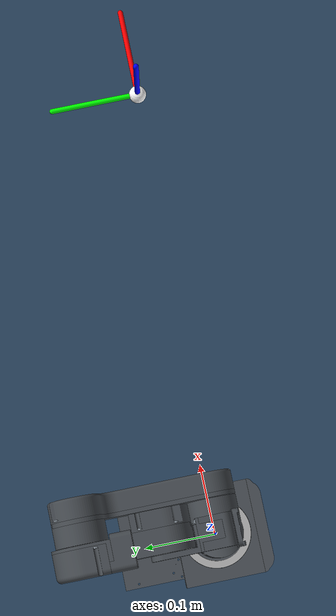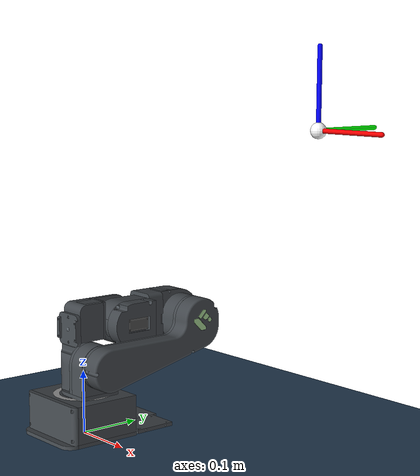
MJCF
<mujoco model="scene">
    <include file="robot.xml" />

    <visual>
        <headlight diffuse="0.6 0.6 0.6" ambient="0.3 0.3 0.3" specular="0 0 0" />
        <rgba haze="0.15 0.25 0.35 1" />
        <global azimuth="160" elevation="-20" />
    </visual>

    <asset>
        <texture type="skybox" builtin="gradient" rgb1="0.3 0.5 0.7" rgb2="0 0 0" width="512"
            height="3072" />
        <texture type="2d" name="groundplane" builtin="checker" mark="edge" rgb1="0.2 0.3 0.4"
            rgb2="0.1 0.2 0.3"
            markrgb="0.8 0.8 0.8" width="300" height="300" />
        <material name="groundplane" texture="groundplane" texuniform="true" texrepeat="5 5"
            reflectance="0.2" />
    </asset>

    <worldbody>
        <light pos="0 0 3.5" dir="0 0 -1" directional="true" />
        <geom name="floor" size="0 0 0.05" pos="0 0 0" type="plane" material="groundplane" />

        <body name="target_frame" mocap="true" pos="0.5 0 0.5">
            <site name="target_center" type="sphere" size="0.01" rgba="1 1 1 1"/>
            <geom type="capsule" size="0.003" fromto="0 0 0  0.1 0 0" rgba="1 0 0 1" contype="0" conaffinity="0"/>
            <geom type="capsule" size="0.003" fromto="0 0 0  0 0.1 0" rgba="0 1 0 1" contype="0" conaffinity="0"/>
            <geom type="capsule" size="0.003" fromto="0 0 0  0 0 0.1" rgba="0 0 1 1" contype="0" conaffinity="0"/>
        </body>
    </worldbody>
</mujoco>
